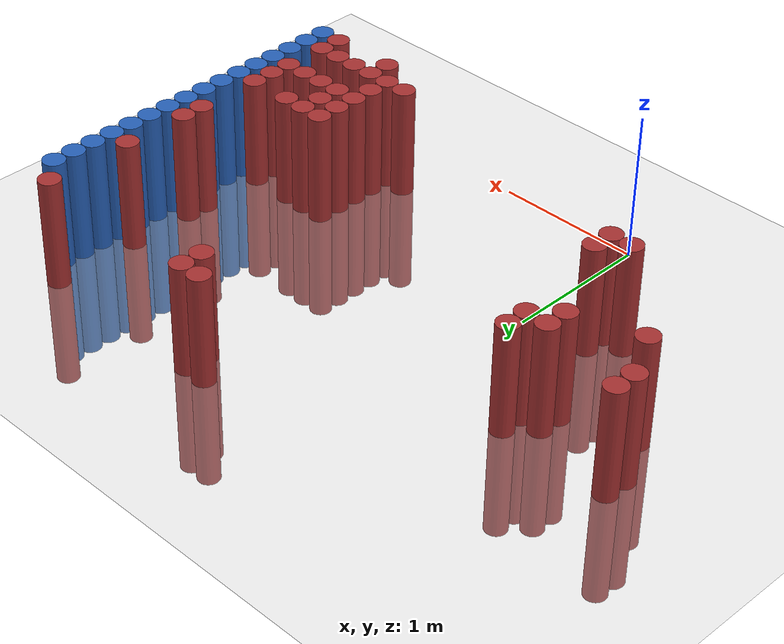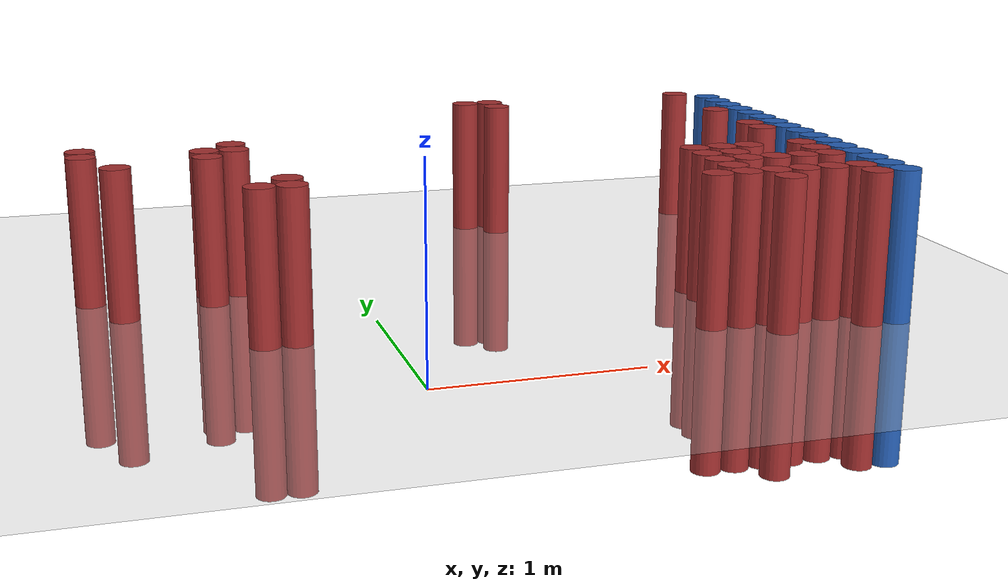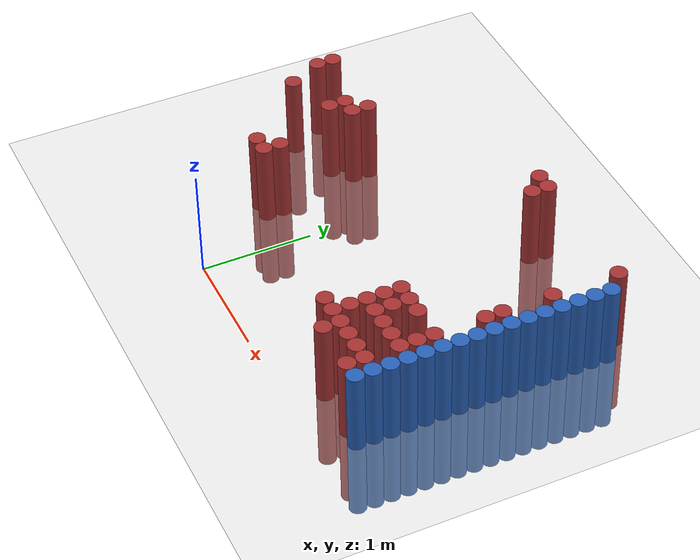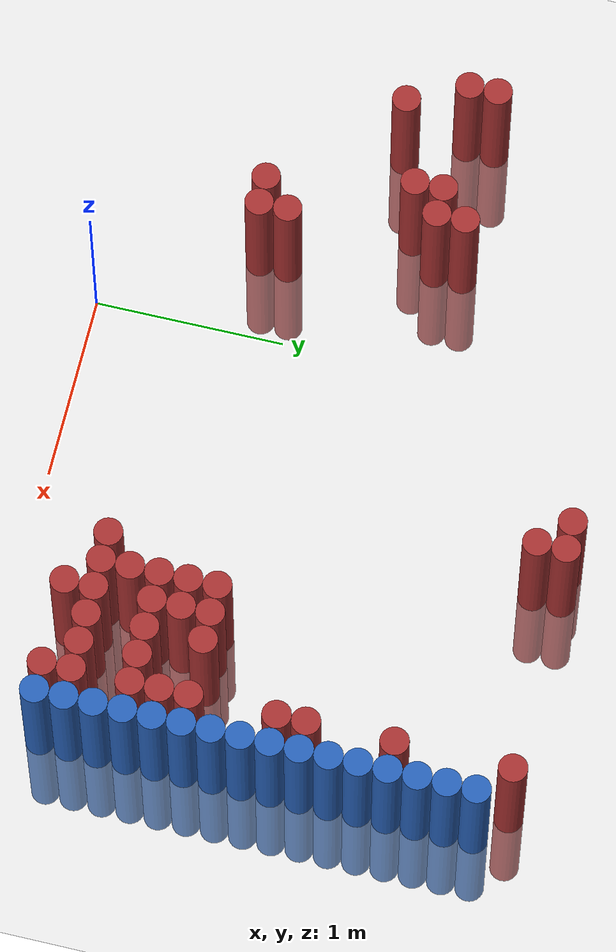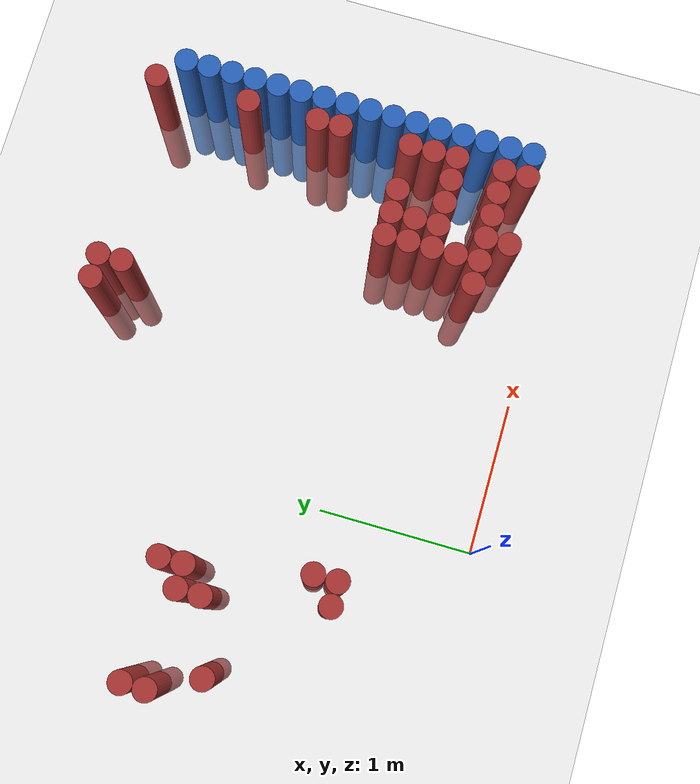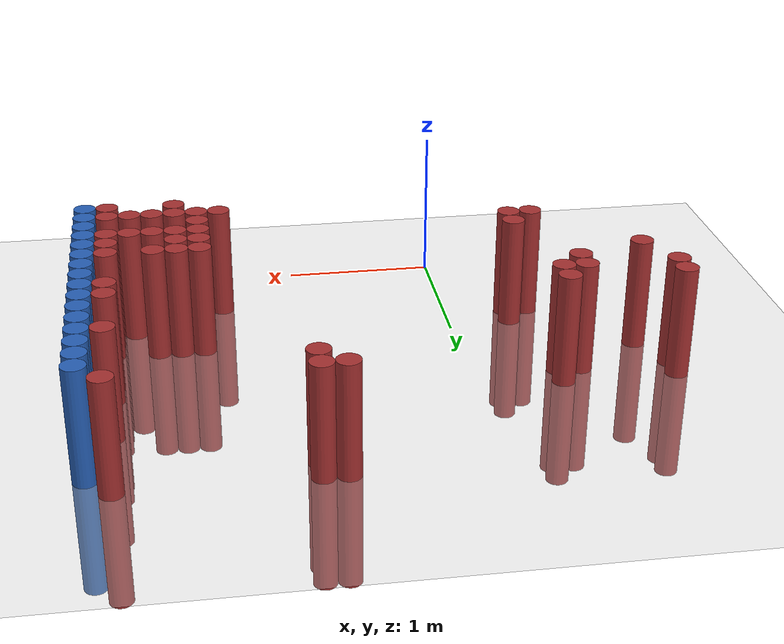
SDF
<sdf version="1.6">
 <world name="default">
  <model name="ground_plane">
   <static>1</static>
   <link name="link">
    <collision name="collision">
     <geometry><plane><normal>0 0 1</normal><size>100 100</size></plane></geometry>
     <surface><friction><ode><mu>100</mu><mu2>50</mu2></ode></friction></surface>
    </collision>
    <visual name="visual">
     <cast_shadows>0</cast_shadows>
     <geometry><plane><normal>0 0 1</normal><size>100 100</size></plane></geometry>
     <material>
      <script><uri>file://media/materials/scripts/gazebo.material</uri><name>Gazebo/Grey</name></script>
     </material>
    </visual>
   </link>
  </model>
  <model name="unit_cylinder_157">
   <static>1</static>
   <pose>-1.325000 1.675000 0.000000 0.000000 0.000000 0.000000</pose>
   <link name="link">
    <inertial>
     <mass>1</mass>
     <inertia><ixx>0.145833</ixx><ixy>0</ixy><ixz>0</ixz><iyy>0.145833</iyy><iyz>0</iyz><izz>0.125</izz></inertia>
    </inertial>
    <collision name="collision">
     <geometry><cylinder><radius>0.075000</radius><length>1.5</length></cylinder></geometry>
    </collision>
    <visual name="visual">
     <geometry><cylinder><radius>0.075000</radius><length>1.5</length></cylinder></geometry>
     <material>
      <ambient>0.648000 0.192000 0.192000 1</ambient>
      <diffuse>0.648000 0.192000 0.192000 1</diffuse>
     </material>
     <material>
      <script><name>Gazebo/Grey</name><uri>file://media/materials/scripts/gazebo.material</uri></script>
     </material>
    </visual>
   </link>
  </model>
  <model name="unit_cylinder_158">
   <static>1</static>
   <pose>-1.325000 1.825000 0.000000 0.000000 0.000000 0.000000</pose>
   <link name="link">
    <inertial>
     <mass>1</mass>
     <inertia><ixx>0.145833</ixx><ixy>0</ixy><ixz>0</ixz><iyy>0.145833</iyy><iyz>0</iyz><izz>0.125</izz></inertia>
    </inertial>
    <collision name="collision">
     <geometry><cylinder><radius>0.075000</radius><length>1.5</length></cylinder></geometry>
    </collision>
    <visual name="visual">
     <geometry><cylinder><radius>0.075000</radius><length>1.5</length></cylinder></geometry>
     <material>
      <ambient>0.648000 0.192000 0.192000 1</ambient>
      <diffuse>0.648000 0.192000 0.192000 1</diffuse>
     </material>
     <material>
      <script><name>Gazebo/Grey</name><uri>file://media/materials/scripts/gazebo.material</uri></script>
     </material>
    </visual>
   </link>
  </model>
  <model name="unit_cylinder_159">
   <static>1</static>
   <pose>-1.175000 1.375000 0.000000 0.000000 0.000000 0.000000</pose>
   <link name="link">
    <inertial>
     <mass>1</mass>
     <inertia><ixx>0.145833</ixx><ixy>0</ixy><ixz>0</ixz><iyy>0.145833</iyy><iyz>0</iyz><izz>0.125</izz></inertia>
    </inertial>
    <collision name="collision">
     <geometry><cylinder><radius>0.075000</radius><length>1.5</length></cylinder></geometry>
    </collision>
    <visual name="visual">
     <geometry><cylinder><radius>0.075000</radius><length>1.5</length></cylinder></geometry>
     <material>
      <ambient>0.648000 0.192000 0.192000 1</ambient>
      <diffuse>0.648000 0.192000 0.192000 1</diffuse>
     </material>
     <material>
      <script><name>Gazebo/Grey</name><uri>file://media/materials/scripts/gazebo.material</uri></script>
     </material>
    </visual>
   </link>
  </model>
  <model name="unit_cylinder_160">
   <static>1</static>
   <pose>-0.725000 1.525000 0.000000 0.000000 0.000000 0.000000</pose>
   <link name="link">
    <inertial>
     <mass>1</mass>
     <inertia><ixx>0.145833</ixx><ixy>0</ixy><ixz>0</ixz><iyy>0.145833</iyy><iyz>0</iyz><izz>0.125</izz></inertia>
    </inertial>
    <collision name="collision">
     <geometry><cylinder><radius>0.075000</radius><length>1.5</length></cylinder></geometry>
    </collision>
    <visual name="visual">
     <geometry><cylinder><radius>0.075000</radius><length>1.5</length></cylinder></geometry>
     <material>
      <ambient>0.648000 0.192000 0.192000 1</ambient>
      <diffuse>0.648000 0.192000 0.192000 1</diffuse>
     </material>
     <material>
      <script><name>Gazebo/Grey</name><uri>file://media/materials/scripts/gazebo.material</uri></script>
     </material>
    </visual>
   </link>
  </model>
  <model name="unit_cylinder_161">
   <static>1</static>
   <pose>-0.725000 1.675000 0.000000 0.000000 0.000000 0.000000</pose>
   <link name="link">
    <inertial>
     <mass>1</mass>
     <inertia><ixx>0.145833</ixx><ixy>0</ixy><ixz>0</ixz><iyy>0.145833</iyy><iyz>0</iyz><izz>0.125</izz></inertia>
    </inertial>
    <collision name="collision">
     <geometry><cylinder><radius>0.075000</radius><length>1.5</length></cylinder></geometry>
    </collision>
    <visual name="visual">
     <geometry><cylinder><radius>0.075000</radius><length>1.5</length></cylinder></geometry>
     <material>
      <ambient>0.648000 0.192000 0.192000 1</ambient>
      <diffuse>0.648000 0.192000 0.192000 1</diffuse>
     </material>
     <material>
      <script><name>Gazebo/Grey</name><uri>file://media/materials/scripts/gazebo.material</uri></script>
     </material>
    </visual>
   </link>
  </model>
  <model name="unit_cylinder_162">
   <static>1</static>
   <pose>-0.575000 0.775000 0.000000 0.000000 0.000000 0.000000</pose>
   <link name="link">
    <inertial>
     <mass>1</mass>
     <inertia><ixx>0.145833</ixx><ixy>0</ixy><ixz>0</ixz><iyy>0.145833</iyy><iyz>0</iyz><izz>0.125</izz></inertia>
    </inertial>
    <collision name="collision">
     <geometry><cylinder><radius>0.075000</radius><length>1.5</length></cylinder></geometry>
    </collision>
    <visual name="visual">
     <geometry><cylinder><radius>0.075000</radius><length>1.5</length></cylinder></geometry>
     <material>
      <ambient>0.648000 0.192000 0.192000 1</ambient>
      <diffuse>0.648000 0.192000 0.192000 1</diffuse>
     </material>
     <material>
      <script><name>Gazebo/Grey</name><uri>file://media/materials/scripts/gazebo.material</uri></script>
     </material>
    </visual>
   </link>
  </model>
  <model name="unit_cylinder_163">
   <static>1</static>
   <pose>-0.575000 1.675000 0.000000 0.000000 0.000000 0.000000</pose>
   <link name="link">
    <inertial>
     <mass>1</mass>
     <inertia><ixx>0.145833</ixx><ixy>0</ixy><ixz>0</ixz><iyy>0.145833</iyy><iyz>0</iyz><izz>0.125</izz></inertia>
    </inertial>
    <collision name="collision">
     <geometry><cylinder><radius>0.075000</radius><length>1.5</length></cylinder></geometry>
    </collision>
    <visual name="visual">
     <geometry><cylinder><radius>0.075000</radius><length>1.5</length></cylinder></geometry>
     <material>
      <ambient>0.648000 0.192000 0.192000 1</ambient>
      <diffuse>0.648000 0.192000 0.192000 1</diffuse>
     </material>
     <material>
      <script><name>Gazebo/Grey</name><uri>file://media/materials/scripts/gazebo.material</uri></script>
     </material>
    </visual>
   </link>
  </model>
  <model name="unit_cylinder_164">
   <static>1</static>
   <pose>-0.575000 1.825000 0.000000 0.000000 0.000000 0.000000</pose>
   <link name="link">
    <inertial>
     <mass>1</mass>
     <inertia><ixx>0.145833</ixx><ixy>0</ixy><ixz>0</ixz><iyy>0.145833</iyy><iyz>0</iyz><izz>0.125</izz></inertia>
    </inertial>
    <collision name="collision">
     <geometry><cylinder><radius>0.075000</radius><length>1.5</length></cylinder></geometry>
    </collision>
    <visual name="visual">
     <geometry><cylinder><radius>0.075000</radius><length>1.5</length></cylinder></geometry>
     <material>
      <ambient>0.648000 0.192000 0.192000 1</ambient>
      <diffuse>0.648000 0.192000 0.192000 1</diffuse>
     </material>
     <material>
      <script><name>Gazebo/Grey</name><uri>file://media/materials/scripts/gazebo.material</uri></script>
     </material>
    </visual>
   </link>
  </model>
  <model name="unit_cylinder_165">
   <static>1</static>
   <pose>-0.425000 0.775000 0.000000 0.000000 0.000000 0.000000</pose>
   <link name="link">
    <inertial>
     <mass>1</mass>
     <inertia><ixx>0.145833</ixx><ixy>0</ixy><ixz>0</ixz><iyy>0.145833</iyy><iyz>0</iyz><izz>0.125</izz></inertia>
    </inertial>
    <collision name="collision">
     <geometry><cylinder><radius>0.075000</radius><length>1.5</length></cylinder></geometry>
    </collision>
    <visual name="visual">
     <geometry><cylinder><radius>0.075000</radius><length>1.5</length></cylinder></geometry>
     <material>
      <ambient>0.648000 0.192000 0.192000 1</ambient>
      <diffuse>0.648000 0.192000 0.192000 1</diffuse>
     </material>
     <material>
      <script><name>Gazebo/Grey</name><uri>file://media/materials/scripts/gazebo.material</uri></script>
     </material>
    </visual>
   </link>
  </model>
  <model name="unit_cylinder_166">
   <static>1</static>
   <pose>-0.425000 0.925000 0.000000 0.000000 0.000000 0.000000</pose>
   <link name="link">
    <inertial>
     <mass>1</mass>
     <inertia><ixx>0.145833</ixx><ixy>0</ixy><ixz>0</ixz><iyy>0.145833</iyy><iyz>0</iyz><izz>0.125</izz></inertia>
    </inertial>
    <collision name="collision">
     <geometry><cylinder><radius>0.075000</radius><length>1.5</length></cylinder></geometry>
    </collision>
    <visual name="visual">
     <geometry><cylinder><radius>0.075000</radius><length>1.5</length></cylinder></geometry>
     <material>
      <ambient>0.648000 0.192000 0.192000 1</ambient>
      <diffuse>0.648000 0.192000 0.192000 1</diffuse>
     </material>
     <material>
      <script><name>Gazebo/Grey</name><uri>file://media/materials/scripts/gazebo.material</uri></script>
     </material>
    </visual>
   </link>
  </model>
  <model name="unit_cylinder_176">
   <static>1</static>
   <pose>0.925000 2.725000 0.000000 0.000000 0.000000 0.000000</pose>
   <link name="link">
    <inertial>
     <mass>1</mass>
     <inertia><ixx>0.145833</ixx><ixy>0</ixy><ixz>0</ixz><iyy>0.145833</iyy><iyz>0</iyz><izz>0.125</izz></inertia>
    </inertial>
    <collision name="collision">
     <geometry><cylinder><radius>0.075000</radius><length>1.5</length></cylinder></geometry>
    </collision>
    <visual name="visual">
     <geometry><cylinder><radius>0.075000</radius><length>1.5</length></cylinder></geometry>
     <material>
      <ambient>0.648000 0.192000 0.192000 1</ambient>
      <diffuse>0.648000 0.192000 0.192000 1</diffuse>
     </material>
     <material>
      <script><name>Gazebo/Grey</name><uri>file://media/materials/scripts/gazebo.material</uri></script>
     </material>
    </visual>
   </link>
  </model>
  <model name="unit_cylinder_183">
   <static>1</static>
   <pose>1.075000 2.575000 0.000000 0.000000 0.000000 0.000000</pose>
   <link name="link">
    <inertial>
     <mass>1</mass>
     <inertia><ixx>0.145833</ixx><ixy>0</ixy><ixz>0</ixz><iyy>0.145833</iyy><iyz>0</iyz><izz>0.125</izz></inertia>
    </inertial>
    <collision name="collision">
     <geometry><cylinder><radius>0.075000</radius><length>1.5</length></cylinder></geometry>
    </collision>
    <visual name="visual">
     <geometry><cylinder><radius>0.075000</radius><length>1.5</length></cylinder></geometry>
     <material>
      <ambient>0.648000 0.192000 0.192000 1</ambient>
      <diffuse>0.648000 0.192000 0.192000 1</diffuse>
     </material>
     <material>
      <script><name>Gazebo/Grey</name><uri>file://media/materials/scripts/gazebo.material</uri></script>
     </material>
    </visual>
   </link>
  </model>
  <model name="unit_cylinder_184">
   <static>1</static>
   <pose>1.075000 2.725000 0.000000 0.000000 0.000000 0.000000</pose>
   <link name="link">
    <inertial>
     <mass>1</mass>
     <inertia><ixx>0.145833</ixx><ixy>0</ixy><ixz>0</ixz><iyy>0.145833</iyy><iyz>0</iyz><izz>0.125</izz></inertia>
    </inertial>
    <collision name="collision">
     <geometry><cylinder><radius>0.075000</radius><length>1.5</length></cylinder></geometry>
    </collision>
    <visual name="visual">
     <geometry><cylinder><radius>0.075000</radius><length>1.5</length></cylinder></geometry>
     <material>
      <ambient>0.648000 0.192000 0.192000 1</ambient>
      <diffuse>0.648000 0.192000 0.192000 1</diffuse>
     </material>
     <material>
      <script><name>Gazebo/Grey</name><uri>file://media/materials/scripts/gazebo.material</uri></script>
     </material>
    </visual>
   </link>
  </model>
  <model name="unit_cylinder_198">
   <static>1</static>
   <pose>1.525000 0.475000 0.000000 0.000000 0.000000 0.000000</pose>
   <link name="link">
    <inertial>
     <mass>1</mass>
     <inertia><ixx>0.145833</ixx><ixy>0</ixy><ixz>0</ixz><iyy>0.145833</iyy><iyz>0</iyz><izz>0.125</izz></inertia>
    </inertial>
    <collision name="collision">
     <geometry><cylinder><radius>0.075000</radius><length>1.5</length></cylinder></geometry>
    </collision>
    <visual name="visual">
     <geometry><cylinder><radius>0.075000</radius><length>1.5</length></cylinder></geometry>
     <material>
      <ambient>0.648000 0.192000 0.192000 1</ambient>
      <diffuse>0.648000 0.192000 0.192000 1</diffuse>
     </material>
     <material>
      <script><name>Gazebo/Grey</name><uri>file://media/materials/scripts/gazebo.material</uri></script>
     </material>
    </visual>
   </link>
  </model>
  <model name="unit_cylinder_201">
   <static>1</static>
   <pose>1.675000 0.475000 0.000000 0.000000 0.000000 0.000000</pose>
   <link name="link">
    <inertial>
     <mass>1</mass>
     <inertia><ixx>0.145833</ixx><ixy>0</ixy><ixz>0</ixz><iyy>0.145833</iyy><iyz>0</iyz><izz>0.125</izz></inertia>
    </inertial>
    <collision name="collision">
     <geometry><cylinder><radius>0.075000</radius><length>1.5</length></cylinder></geometry>
    </collision>
    <visual name="visual">
     <geometry><cylinder><radius>0.075000</radius><length>1.5</length></cylinder></geometry>
     <material>
      <ambient>0.648000 0.192000 0.192000 1</ambient>
      <diffuse>0.648000 0.192000 0.192000 1</diffuse>
     </material>
     <material>
      <script><name>Gazebo/Grey</name><uri>file://media/materials/scripts/gazebo.material</uri></script>
     </material>
    </visual>
   </link>
  </model>
  <model name="unit_cylinder_202">
   <static>1</static>
   <pose>1.675000 0.625000 0.000000 0.000000 0.000000 0.000000</pose>
   <link name="link">
    <inertial>
     <mass>1</mass>
     <inertia><ixx>0.145833</ixx><ixy>0</ixy><ixz>0</ixz><iyy>0.145833</iyy><iyz>0</iyz><izz>0.125</izz></inertia>
    </inertial>
    <collision name="collision">
     <geometry><cylinder><radius>0.075000</radius><length>1.5</length></cylinder></geometry>
    </collision>
    <visual name="visual">
     <geometry><cylinder><radius>0.075000</radius><length>1.5</length></cylinder></geometry>
     <material>
      <ambient>0.648000 0.192000 0.192000 1</ambient>
      <diffuse>0.648000 0.192000 0.192000 1</diffuse>
     </material>
     <material>
      <script><name>Gazebo/Grey</name><uri>file://media/materials/scripts/gazebo.material</uri></script>
     </material>
    </visual>
   </link>
  </model>
  <model name="unit_cylinder_203">
   <static>1</static>
   <pose>1.675000 0.775000 0.000000 0.000000 0.000000 0.000000</pose>
   <link name="link">
    <inertial>
     <mass>1</mass>
     <inertia><ixx>0.145833</ixx><ixy>0</ixy><ixz>0</ixz><iyy>0.145833</iyy><iyz>0</iyz><izz>0.125</izz></inertia>
    </inertial>
    <collision name="collision">
     <geometry><cylinder><radius>0.075000</radius><length>1.5</length></cylinder></geometry>
    </collision>
    <visual name="visual">
     <geometry><cylinder><radius>0.075000</radius><length>1.5</length></cylinder></geometry>
     <material>
      <ambient>0.648000 0.192000 0.192000 1</ambient>
      <diffuse>0.648000 0.192000 0.192000 1</diffuse>
     </material>
     <material>
      <script><name>Gazebo/Grey</name><uri>file://media/materials/scripts/gazebo.material</uri></script>
     </material>
    </visual>
   </link>
  </model>
  <model name="unit_cylinder_204">
   <static>1</static>
   <pose>1.675000 0.925000 0.000000 0.000000 0.000000 0.000000</pose>
   <link name="link">
    <inertial>
     <mass>1</mass>
     <inertia><ixx>0.145833</ixx><ixy>0</ixy><ixz>0</ixz><iyy>0.145833</iyy><iyz>0</iyz><izz>0.125</izz></inertia>
    </inertial>
    <collision name="collision">
     <geometry><cylinder><radius>0.075000</radius><length>1.5</length></cylinder></geometry>
    </collision>
    <visual name="visual">
     <geometry><cylinder><radius>0.075000</radius><length>1.5</length></cylinder></geometry>
     <material>
      <ambient>0.648000 0.192000 0.192000 1</ambient>
      <diffuse>0.648000 0.192000 0.192000 1</diffuse>
     </material>
     <material>
      <script><name>Gazebo/Grey</name><uri>file://media/materials/scripts/gazebo.material</uri></script>
     </material>
    </visual>
   </link>
  </model>
  <model name="unit_cylinder_205">
   <static>1</static>
   <pose>1.675000 1.075000 0.000000 0.000000 0.000000 0.000000</pose>
   <link name="link">
    <inertial>
     <mass>1</mass>
     <inertia><ixx>0.145833</ixx><ixy>0</ixy><ixz>0</ixz><iyy>0.145833</iyy><iyz>0</iyz><izz>0.125</izz></inertia>
    </inertial>
    <collision name="collision">
     <geometry><cylinder><radius>0.075000</radius><length>1.5</length></cylinder></geometry>
    </collision>
    <visual name="visual">
     <geometry><cylinder><radius>0.075000</radius><length>1.5</length></cylinder></geometry>
     <material>
      <ambient>0.648000 0.192000 0.192000 1</ambient>
      <diffuse>0.648000 0.192000 0.192000 1</diffuse>
     </material>
     <material>
      <script><name>Gazebo/Grey</name><uri>file://media/materials/scripts/gazebo.material</uri></script>
     </material>
    </visual>
   </link>
  </model>
  <model name="unit_cylinder_208">
   <static>1</static>
   <pose>1.825000 0.325000 0.000000 0.000000 0.000000 0.000000</pose>
   <link name="link">
    <inertial>
     <mass>1</mass>
     <inertia><ixx>0.145833</ixx><ixy>0</ixy><ixz>0</ixz><iyy>0.145833</iyy><iyz>0</iyz><izz>0.125</izz></inertia>
    </inertial>
    <collision name="collision">
     <geometry><cylinder><radius>0.075000</radius><length>1.5</length></cylinder></geometry>
    </collision>
    <visual name="visual">
     <geometry><cylinder><radius>0.075000</radius><length>1.5</length></cylinder></geometry>
     <material>
      <ambient>0.648000 0.192000 0.192000 1</ambient>
      <diffuse>0.648000 0.192000 0.192000 1</diffuse>
     </material>
     <material>
      <script><name>Gazebo/Grey</name><uri>file://media/materials/scripts/gazebo.material</uri></script>
     </material>
    </visual>
   </link>
  </model>
  <model name="unit_cylinder_209">
   <static>1</static>
   <pose>1.825000 0.475000 0.000000 0.000000 0.000000 0.000000</pose>
   <link name="link">
    <inertial>
     <mass>1</mass>
     <inertia><ixx>0.145833</ixx><ixy>0</ixy><ixz>0</ixz><iyy>0.145833</iyy><iyz>0</iyz><izz>0.125</izz></inertia>
    </inertial>
    <collision name="collision">
     <geometry><cylinder><radius>0.075000</radius><length>1.5</length></cylinder></geometry>
    </collision>
    <visual name="visual">
     <geometry><cylinder><radius>0.075000</radius><length>1.5</length></cylinder></geometry>
     <material>
      <ambient>0.648000 0.192000 0.192000 1</ambient>
      <diffuse>0.648000 0.192000 0.192000 1</diffuse>
     </material>
     <material>
      <script><name>Gazebo/Grey</name><uri>file://media/materials/scripts/gazebo.material</uri></script>
     </material>
    </visual>
   </link>
  </model>
  <model name="unit_cylinder_210">
   <static>1</static>
   <pose>1.825000 0.775000 0.000000 0.000000 0.000000 0.000000</pose>
   <link name="link">
    <inertial>
     <mass>1</mass>
     <inertia><ixx>0.145833</ixx><ixy>0</ixy><ixz>0</ixz><iyy>0.145833</iyy><iyz>0</iyz><izz>0.125</izz></inertia>
    </inertial>
    <collision name="collision">
     <geometry><cylinder><radius>0.075000</radius><length>1.5</length></cylinder></geometry>
    </collision>
    <visual name="visual">
     <geometry><cylinder><radius>0.075000</radius><length>1.5</length></cylinder></geometry>
     <material>
      <ambient>0.648000 0.192000 0.192000 1</ambient>
      <diffuse>0.648000 0.192000 0.192000 1</diffuse>
     </material>
     <material>
      <script><name>Gazebo/Grey</name><uri>file://media/materials/scripts/gazebo.material</uri></script>
     </material>
    </visual>
   </link>
  </model>
  <model name="unit_cylinder_211">
   <static>1</static>
   <pose>1.825000 0.925000 0.000000 0.000000 0.000000 0.000000</pose>
   <link name="link">
    <inertial>
     <mass>1</mass>
     <inertia><ixx>0.145833</ixx><ixy>0</ixy><ixz>0</ixz><iyy>0.145833</iyy><iyz>0</iyz><izz>0.125</izz></inertia>
    </inertial>
    <collision name="collision">
     <geometry><cylinder><radius>0.075000</radius><length>1.5</length></cylinder></geometry>
    </collision>
    <visual name="visual">
     <geometry><cylinder><radius>0.075000</radius><length>1.5</length></cylinder></geometry>
     <material>
      <ambient>0.648000 0.192000 0.192000 1</ambient>
      <diffuse>0.648000 0.192000 0.192000 1</diffuse>
     </material>
     <material>
      <script><name>Gazebo/Grey</name><uri>file://media/materials/scripts/gazebo.material</uri></script>
     </material>
    </visual>
   </link>
  </model>
  <model name="unit_cylinder_212">
   <static>1</static>
   <pose>1.825000 1.075000 0.000000 0.000000 0.000000 0.000000</pose>
   <link name="link">
    <inertial>
     <mass>1</mass>
     <inertia><ixx>0.145833</ixx><ixy>0</ixy><ixz>0</ixz><iyy>0.145833</iyy><iyz>0</iyz><izz>0.125</izz></inertia>
    </inertial>
    <collision name="collision">
     <geometry><cylinder><radius>0.075000</radius><length>1.5</length></cylinder></geometry>
    </collision>
    <visual name="visual">
     <geometry><cylinder><radius>0.075000</radius><length>1.5</length></cylinder></geometry>
     <material>
      <ambient>0.648000 0.192000 0.192000 1</ambient>
      <diffuse>0.648000 0.192000 0.192000 1</diffuse>
     </material>
     <material>
      <script><name>Gazebo/Grey</name><uri>file://media/materials/scripts/gazebo.material</uri></script>
     </material>
    </visual>
   </link>
  </model>
  <model name="unit_cylinder_214">
   <static>1</static>
   <pose>1.975000 0.475000 0.000000 0.000000 0.000000 0.000000</pose>
   <link name="link">
    <inertial>
     <mass>1</mass>
     <inertia><ixx>0.145833</ixx><ixy>0</ixy><ixz>0</ixz><iyy>0.145833</iyy><iyz>0</iyz><izz>0.125</izz></inertia>
    </inertial>
    <collision name="collision">
     <geometry><cylinder><radius>0.075000</radius><length>1.5</length></cylinder></geometry>
    </collision>
    <visual name="visual">
     <geometry><cylinder><radius>0.075000</radius><length>1.5</length></cylinder></geometry>
     <material>
      <ambient>0.648000 0.192000 0.192000 1</ambient>
      <diffuse>0.648000 0.192000 0.192000 1</diffuse>
     </material>
     <material>
      <script><name>Gazebo/Grey</name><uri>file://media/materials/scripts/gazebo.material</uri></script>
     </material>
    </visual>
   </link>
  </model>
  <model name="unit_cylinder_215">
   <static>1</static>
   <pose>1.975000 0.775000 0.000000 0.000000 0.000000 0.000000</pose>
   <link name="link">
    <inertial>
     <mass>1</mass>
     <inertia><ixx>0.145833</ixx><ixy>0</ixy><ixz>0</ixz><iyy>0.145833</iyy><iyz>0</iyz><izz>0.125</izz></inertia>
    </inertial>
    <collision name="collision">
     <geometry><cylinder><radius>0.075000</radius><length>1.5</length></cylinder></geometry>
    </collision>
    <visual name="visual">
     <geometry><cylinder><radius>0.075000</radius><length>1.5</length></cylinder></geometry>
     <material>
      <ambient>0.648000 0.192000 0.192000 1</ambient>
      <diffuse>0.648000 0.192000 0.192000 1</diffuse>
     </material>
     <material>
      <script><name>Gazebo/Grey</name><uri>file://media/materials/scripts/gazebo.material</uri></script>
     </material>
    </visual>
   </link>
  </model>
  <model name="unit_cylinder_216">
   <static>1</static>
   <pose>1.975000 1.075000 0.000000 0.000000 0.000000 0.000000</pose>
   <link name="link">
    <inertial>
     <mass>1</mass>
     <inertia><ixx>0.145833</ixx><ixy>0</ixy><ixz>0</ixz><iyy>0.145833</iyy><iyz>0</iyz><izz>0.125</izz></inertia>
    </inertial>
    <collision name="collision">
     <geometry><cylinder><radius>0.075000</radius><length>1.5</length></cylinder></geometry>
    </collision>
    <visual name="visual">
     <geometry><cylinder><radius>0.075000</radius><length>1.5</length></cylinder></geometry>
     <material>
      <ambient>0.648000 0.192000 0.192000 1</ambient>
      <diffuse>0.648000 0.192000 0.192000 1</diffuse>
     </material>
     <material>
      <script><name>Gazebo/Grey</name><uri>file://media/materials/scripts/gazebo.material</uri></script>
     </material>
    </visual>
   </link>
  </model>
  <model name="unit_cylinder_217">
   <static>1</static>
   <pose>2.125000 0.475000 0.000000 0.000000 0.000000 0.000000</pose>
   <link name="link">
    <inertial>
     <mass>1</mass>
     <inertia><ixx>0.145833</ixx><ixy>0</ixy><ixz>0</ixz><iyy>0.145833</iyy><iyz>0</iyz><izz>0.125</izz></inertia>
    </inertial>
    <collision name="collision">
     <geometry><cylinder><radius>0.075000</radius><length>1.5</length></cylinder></geometry>
    </collision>
    <visual name="visual">
     <geometry><cylinder><radius>0.075000</radius><length>1.5</length></cylinder></geometry>
     <material>
      <ambient>0.648000 0.192000 0.192000 1</ambient>
      <diffuse>0.648000 0.192000 0.192000 1</diffuse>
     </material>
     <material>
      <script><name>Gazebo/Grey</name><uri>file://media/materials/scripts/gazebo.material</uri></script>
     </material>
    </visual>
   </link>
  </model>
  <model name="unit_cylinder_218">
   <static>1</static>
   <pose>2.125000 0.775000 0.000000 0.000000 0.000000 0.000000</pose>
   <link name="link">
    <inertial>
     <mass>1</mass>
     <inertia><ixx>0.145833</ixx><ixy>0</ixy><ixz>0</ixz><iyy>0.145833</iyy><iyz>0</iyz><izz>0.125</izz></inertia>
    </inertial>
    <collision name="collision">
     <geometry><cylinder><radius>0.075000</radius><length>1.5</length></cylinder></geometry>
    </collision>
    <visual name="visual">
     <geometry><cylinder><radius>0.075000</radius><length>1.5</length></cylinder></geometry>
     <material>
      <ambient>0.648000 0.192000 0.192000 1</ambient>
      <diffuse>0.648000 0.192000 0.192000 1</diffuse>
     </material>
     <material>
      <script><name>Gazebo/Grey</name><uri>file://media/materials/scripts/gazebo.material</uri></script>
     </material>
    </visual>
   </link>
  </model>
  <model name="unit_cylinder_222">
   <static>1</static>
   <pose>2.275000 0.325000 0.000000 0.000000 0.000000 0.000000</pose>
   <link name="link">
    <inertial>
     <mass>1</mass>
     <inertia><ixx>0.145833</ixx><ixy>0</ixy><ixz>0</ixz><iyy>0.145833</iyy><iyz>0</iyz><izz>0.125</izz></inertia>
    </inertial>
    <collision name="collision">
     <geometry><cylinder><radius>0.075000</radius><length>1.5</length></cylinder></geometry>
    </collision>
    <visual name="visual">
     <geometry><cylinder><radius>0.075000</radius><length>1.5</length></cylinder></geometry>
     <material>
      <ambient>0.648000 0.192000 0.192000 1</ambient>
      <diffuse>0.648000 0.192000 0.192000 1</diffuse>
     </material>
     <material>
      <script><name>Gazebo/Grey</name><uri>file://media/materials/scripts/gazebo.material</uri></script>
     </material>
    </visual>
   </link>
  </model>
  <model name="unit_cylinder_223">
   <static>1</static>
   <pose>2.275000 0.475000 0.000000 0.000000 0.000000 0.000000</pose>
   <link name="link">
    <inertial>
     <mass>1</mass>
     <inertia><ixx>0.145833</ixx><ixy>0</ixy><ixz>0</ixz><iyy>0.145833</iyy><iyz>0</iyz><izz>0.125</izz></inertia>
    </inertial>
    <collision name="collision">
     <geometry><cylinder><radius>0.075000</radius><length>1.5</length></cylinder></geometry>
    </collision>
    <visual name="visual">
     <geometry><cylinder><radius>0.075000</radius><length>1.5</length></cylinder></geometry>
     <material>
      <ambient>0.648000 0.192000 0.192000 1</ambient>
      <diffuse>0.648000 0.192000 0.192000 1</diffuse>
     </material>
     <material>
      <script><name>Gazebo/Grey</name><uri>file://media/materials/scripts/gazebo.material</uri></script>
     </material>
    </visual>
   </link>
  </model>
  <model name="unit_cylinder_224">
   <static>1</static>
   <pose>2.275000 0.775000 0.000000 0.000000 0.000000 0.000000</pose>
   <link name="link">
    <inertial>
     <mass>1</mass>
     <inertia><ixx>0.145833</ixx><ixy>0</ixy><ixz>0</ixz><iyy>0.145833</iyy><iyz>0</iyz><izz>0.125</izz></inertia>
    </inertial>
    <collision name="collision">
     <geometry><cylinder><radius>0.075000</radius><length>1.5</length></cylinder></geometry>
    </collision>
    <visual name="visual">
     <geometry><cylinder><radius>0.075000</radius><length>1.5</length></cylinder></geometry>
     <material>
      <ambient>0.648000 0.192000 0.192000 1</ambient>
      <diffuse>0.648000 0.192000 0.192000 1</diffuse>
     </material>
     <material>
      <script><name>Gazebo/Grey</name><uri>file://media/materials/scripts/gazebo.material</uri></script>
     </material>
    </visual>
   </link>
  </model>
  <model name="unit_cylinder_225">
   <static>1</static>
   <pose>2.275000 0.925000 0.000000 0.000000 0.000000 0.000000</pose>
   <link name="link">
    <inertial>
     <mass>1</mass>
     <inertia><ixx>0.145833</ixx><ixy>0</ixy><ixz>0</ixz><iyy>0.145833</iyy><iyz>0</iyz><izz>0.125</izz></inertia>
    </inertial>
    <collision name="collision">
     <geometry><cylinder><radius>0.075000</radius><length>1.5</length></cylinder></geometry>
    </collision>
    <visual name="visual">
     <geometry><cylinder><radius>0.075000</radius><length>1.5</length></cylinder></geometry>
     <material>
      <ambient>0.648000 0.192000 0.192000 1</ambient>
      <diffuse>0.648000 0.192000 0.192000 1</diffuse>
     </material>
     <material>
      <script><name>Gazebo/Grey</name><uri>file://media/materials/scripts/gazebo.material</uri></script>
     </material>
    </visual>
   </link>
  </model>
  <model name="unit_cylinder_226">
   <static>1</static>
   <pose>2.275000 1.075000 0.000000 0.000000 0.000000 0.000000</pose>
   <link name="link">
    <inertial>
     <mass>1</mass>
     <inertia><ixx>0.145833</ixx><ixy>0</ixy><ixz>0</ixz><iyy>0.145833</iyy><iyz>0</iyz><izz>0.125</izz></inertia>
    </inertial>
    <collision name="collision">
     <geometry><cylinder><radius>0.075000</radius><length>1.5</length></cylinder></geometry>
    </collision>
    <visual name="visual">
     <geometry><cylinder><radius>0.075000</radius><length>1.5</length></cylinder></geometry>
     <material>
      <ambient>0.648000 0.192000 0.192000 1</ambient>
      <diffuse>0.648000 0.192000 0.192000 1</diffuse>
     </material>
     <material>
      <script><name>Gazebo/Grey</name><uri>file://media/materials/scripts/gazebo.material</uri></script>
     </material>
    </visual>
   </link>
  </model>
  <model name="unit_cylinder_227">
   <static>1</static>
   <pose>2.275000 1.525000 0.000000 0.000000 0.000000 0.000000</pose>
   <link name="link">
    <inertial>
     <mass>1</mass>
     <inertia><ixx>0.145833</ixx><ixy>0</ixy><ixz>0</ixz><iyy>0.145833</iyy><iyz>0</iyz><izz>0.125</izz></inertia>
    </inertial>
    <collision name="collision">
     <geometry><cylinder><radius>0.075000</radius><length>1.5</length></cylinder></geometry>
    </collision>
    <visual name="visual">
     <geometry><cylinder><radius>0.075000</radius><length>1.5</length></cylinder></geometry>
     <material>
      <ambient>0.648000 0.192000 0.192000 1</ambient>
      <diffuse>0.648000 0.192000 0.192000 1</diffuse>
     </material>
     <material>
      <script><name>Gazebo/Grey</name><uri>file://media/materials/scripts/gazebo.material</uri></script>
     </material>
    </visual>
   </link>
  </model>
  <model name="unit_cylinder_228">
   <static>1</static>
   <pose>2.275000 1.675000 0.000000 0.000000 0.000000 0.000000</pose>
   <link name="link">
    <inertial>
     <mass>1</mass>
     <inertia><ixx>0.145833</ixx><ixy>0</ixy><ixz>0</ixz><iyy>0.145833</iyy><iyz>0</iyz><izz>0.125</izz></inertia>
    </inertial>
    <collision name="collision">
     <geometry><cylinder><radius>0.075000</radius><length>1.5</length></cylinder></geometry>
    </collision>
    <visual name="visual">
     <geometry><cylinder><radius>0.075000</radius><length>1.5</length></cylinder></geometry>
     <material>
      <ambient>0.648000 0.192000 0.192000 1</ambient>
      <diffuse>0.648000 0.192000 0.192000 1</diffuse>
     </material>
     <material>
      <script><name>Gazebo/Grey</name><uri>file://media/materials/scripts/gazebo.material</uri></script>
     </material>
    </visual>
   </link>
  </model>
  <model name="unit_cylinder_229">
   <static>1</static>
   <pose>2.275000 2.125000 0.000000 0.000000 0.000000 0.000000</pose>
   <link name="link">
    <inertial>
     <mass>1</mass>
     <inertia><ixx>0.145833</ixx><ixy>0</ixy><ixz>0</ixz><iyy>0.145833</iyy><iyz>0</iyz><izz>0.125</izz></inertia>
    </inertial>
    <collision name="collision">
     <geometry><cylinder><radius>0.075000</radius><length>1.5</length></cylinder></geometry>
    </collision>
    <visual name="visual">
     <geometry><cylinder><radius>0.075000</radius><length>1.5</length></cylinder></geometry>
     <material>
      <ambient>0.648000 0.192000 0.192000 1</ambient>
      <diffuse>0.648000 0.192000 0.192000 1</diffuse>
     </material>
     <material>
      <script><name>Gazebo/Grey</name><uri>file://media/materials/scripts/gazebo.material</uri></script>
     </material>
    </visual>
   </link>
  </model>
  <model name="unit_cylinder_230">
   <static>1</static>
   <pose>2.275000 2.725000 0.000000 0.000000 0.000000 0.000000</pose>
   <link name="link">
    <inertial>
     <mass>1</mass>
     <inertia><ixx>0.145833</ixx><ixy>0</ixy><ixz>0</ixz><iyy>0.145833</iyy><iyz>0</iyz><izz>0.125</izz></inertia>
    </inertial>
    <collision name="collision">
     <geometry><cylinder><radius>0.075000</radius><length>1.5</length></cylinder></geometry>
    </collision>
    <visual name="visual">
     <geometry><cylinder><radius>0.075000</radius><length>1.5</length></cylinder></geometry>
     <material>
      <ambient>0.648000 0.192000 0.192000 1</ambient>
      <diffuse>0.648000 0.192000 0.192000 1</diffuse>
     </material>
     <material>
      <script><name>Gazebo/Grey</name><uri>file://media/materials/scripts/gazebo.material</uri></script>
     </material>
    </visual>
   </link>
  </model>
  <model name="unit_cylinder_242">
   <static>1</static>
   <pose>2.425000 0.325000 0.000000 0.000000 0.000000 0.000000</pose>
   <link name="link">
    <inertial>
     <mass>1</mass>
     <inertia><ixx>0.145833</ixx><ixy>0</ixy><ixz>0</ixz><iyy>0.145833</iyy><iyz>0</iyz><izz>0.125</izz></inertia>
    </inertial>
    <collision name="collision">
     <geometry><cylinder><radius>0.075000</radius><length>1.5</length></cylinder></geometry>
    </collision>
    <visual name="visual">
     <geometry><cylinder><radius>0.075000</radius><length>1.5</length></cylinder></geometry>
     <material>
      <ambient>0.152000 0.379000 0.720000 1</ambient>
      <diffuse>0.152000 0.379000 0.720000 1</diffuse>
     </material>
     <material>
      <script><name>Gazebo/Grey</name><uri>file://media/materials/scripts/gazebo.material</uri></script>
     </material>
    </visual>
   </link>
  </model>
  <model name="unit_cylinder_243">
   <static>1</static>
   <pose>2.425000 0.475000 0.000000 0.000000 0.000000 0.000000</pose>
   <link name="link">
    <inertial>
     <mass>1</mass>
     <inertia><ixx>0.145833</ixx><ixy>0</ixy><ixz>0</ixz><iyy>0.145833</iyy><iyz>0</iyz><izz>0.125</izz></inertia>
    </inertial>
    <collision name="collision">
     <geometry><cylinder><radius>0.075000</radius><length>1.5</length></cylinder></geometry>
    </collision>
    <visual name="visual">
     <geometry><cylinder><radius>0.075000</radius><length>1.5</length></cylinder></geometry>
     <material>
      <ambient>0.152000 0.379000 0.720000 1</ambient>
      <diffuse>0.152000 0.379000 0.720000 1</diffuse>
     </material>
     <material>
      <script><name>Gazebo/Grey</name><uri>file://media/materials/scripts/gazebo.material</uri></script>
     </material>
    </visual>
   </link>
  </model>
  <model name="unit_cylinder_244">
   <static>1</static>
   <pose>2.425000 0.625000 0.000000 0.000000 0.000000 0.000000</pose>
   <link name="link">
    <inertial>
     <mass>1</mass>
     <inertia><ixx>0.145833</ixx><ixy>0</ixy><ixz>0</ixz><iyy>0.145833</iyy><iyz>0</iyz><izz>0.125</izz></inertia>
    </inertial>
    <collision name="collision">
     <geometry><cylinder><radius>0.075000</radius><length>1.5</length></cylinder></geometry>
    </collision>
    <visual name="visual">
     <geometry><cylinder><radius>0.075000</radius><length>1.5</length></cylinder></geometry>
     <material>
      <ambient>0.152000 0.379000 0.720000 1</ambient>
      <diffuse>0.152000 0.379000 0.720000 1</diffuse>
     </material>
     <material>
      <script><name>Gazebo/Grey</name><uri>file://media/materials/scripts/gazebo.material</uri></script>
     </material>
    </visual>
   </link>
  </model>
  <model name="unit_cylinder_245">
   <static>1</static>
   <pose>2.425000 0.775000 0.000000 0.000000 0.000000 0.000000</pose>
   <link name="link">
    <inertial>
     <mass>1</mass>
     <inertia><ixx>0.145833</ixx><ixy>0</ixy><ixz>0</ixz><iyy>0.145833</iyy><iyz>0</iyz><izz>0.125</izz></inertia>
    </inertial>
    <collision name="collision">
     <geometry><cylinder><radius>0.075000</radius><length>1.5</length></cylinder></geometry>
    </collision>
    <visual name="visual">
     <geometry><cylinder><radius>0.075000</radius><length>1.5</length></cylinder></geometry>
     <material>
      <ambient>0.152000 0.379000 0.720000 1</ambient>
      <diffuse>0.152000 0.379000 0.720000 1</diffuse>
     </material>
     <material>
      <script><name>Gazebo/Grey</name><uri>file://media/materials/scripts/gazebo.material</uri></script>
     </material>
    </visual>
   </link>
  </model>
  <model name="unit_cylinder_246">
   <static>1</static>
   <pose>2.425000 0.925000 0.000000 0.000000 0.000000 0.000000</pose>
   <link name="link">
    <inertial>
     <mass>1</mass>
     <inertia><ixx>0.145833</ixx><ixy>0</ixy><ixz>0</ixz><iyy>0.145833</iyy><iyz>0</iyz><izz>0.125</izz></inertia>
    </inertial>
    <collision name="collision">
     <geometry><cylinder><radius>0.075000</radius><length>1.5</length></cylinder></geometry>
    </collision>
    <visual name="visual">
     <geometry><cylinder><radius>0.075000</radius><length>1.5</length></cylinder></geometry>
     <material>
      <ambient>0.152000 0.379000 0.720000 1</ambient>
      <diffuse>0.152000 0.379000 0.720000 1</diffuse>
     </material>
     <material>
      <script><name>Gazebo/Grey</name><uri>file://media/materials/scripts/gazebo.material</uri></script>
     </material>
    </visual>
   </link>
  </model>
  <model name="unit_cylinder_247">
   <static>1</static>
   <pose>2.425000 1.075000 0.000000 0.000000 0.000000 0.000000</pose>
   <link name="link">
    <inertial>
     <mass>1</mass>
     <inertia><ixx>0.145833</ixx><ixy>0</ixy><ixz>0</ixz><iyy>0.145833</iyy><iyz>0</iyz><izz>0.125</izz></inertia>
    </inertial>
    <collision name="collision">
     <geometry><cylinder><radius>0.075000</radius><length>1.5</length></cylinder></geometry>
    </collision>
    <visual name="visual">
     <geometry><cylinder><radius>0.075000</radius><length>1.5</length></cylinder></geometry>
     <material>
      <ambient>0.152000 0.379000 0.720000 1</ambient>
      <diffuse>0.152000 0.379000 0.720000 1</diffuse>
     </material>
     <material>
      <script><name>Gazebo/Grey</name><uri>file://media/materials/scripts/gazebo.material</uri></script>
     </material>
    </visual>
   </link>
  </model>
  <model name="unit_cylinder_248">
   <static>1</static>
   <pose>2.425000 1.225000 0.000000 0.000000 0.000000 0.000000</pose>
   <link name="link">
    <inertial>
     <mass>1</mass>
     <inertia><ixx>0.145833</ixx><ixy>0</ixy><ixz>0</ixz><iyy>0.145833</iyy><iyz>0</iyz><izz>0.125</izz></inertia>
    </inertial>
    <collision name="collision">
     <geometry><cylinder><radius>0.075000</radius><length>1.5</length></cylinder></geometry>
    </collision>
    <visual name="visual">
     <geometry><cylinder><radius>0.075000</radius><length>1.5</length></cylinder></geometry>
     <material>
      <ambient>0.152000 0.379000 0.720000 1</ambient>
      <diffuse>0.152000 0.379000 0.720000 1</diffuse>
     </material>
     <material>
      <script><name>Gazebo/Grey</name><uri>file://media/materials/scripts/gazebo.material</uri></script>
     </material>
    </visual>
   </link>
  </model>
  <model name="unit_cylinder_249">
   <static>1</static>
   <pose>2.425000 1.375000 0.000000 0.000000 0.000000 0.000000</pose>
   <link name="link">
    <inertial>
     <mass>1</mass>
     <inertia><ixx>0.145833</ixx><ixy>0</ixy><ixz>0</ixz><iyy>0.145833</iyy><iyz>0</iyz><izz>0.125</izz></inertia>
    </inertial>
    <collision name="collision">
     <geometry><cylinder><radius>0.075000</radius><length>1.5</length></cylinder></geometry>
    </collision>
    <visual name="visual">
     <geometry><cylinder><radius>0.075000</radius><length>1.5</length></cylinder></geometry>
     <material>
      <ambient>0.152000 0.379000 0.720000 1</ambient>
      <diffuse>0.152000 0.379000 0.720000 1</diffuse>
     </material>
     <material>
      <script><name>Gazebo/Grey</name><uri>file://media/materials/scripts/gazebo.material</uri></script>
     </material>
    </visual>
   </link>
  </model>
  <model name="unit_cylinder_250">
   <static>1</static>
   <pose>2.425000 1.525000 0.000000 0.000000 0.000000 0.000000</pose>
   <link name="link">
    <inertial>
     <mass>1</mass>
     <inertia><ixx>0.145833</ixx><ixy>0</ixy><ixz>0</ixz><iyy>0.145833</iyy><iyz>0</iyz><izz>0.125</izz></inertia>
    </inertial>
    <collision name="collision">
     <geometry><cylinder><radius>0.075000</radius><length>1.5</length></cylinder></geometry>
    </collision>
    <visual name="visual">
     <geometry><cylinder><radius>0.075000</radius><length>1.5</length></cylinder></geometry>
     <material>
      <ambient>0.152000 0.379000 0.720000 1</ambient>
      <diffuse>0.152000 0.379000 0.720000 1</diffuse>
     </material>
     <material>
      <script><name>Gazebo/Grey</name><uri>file://media/materials/scripts/gazebo.material</uri></script>
     </material>
    </visual>
   </link>
  </model>
  <model name="unit_cylinder_251">
   <static>1</static>
   <pose>2.425000 1.675000 0.000000 0.000000 0.000000 0.000000</pose>
   <link name="link">
    <inertial>
     <mass>1</mass>
     <inertia><ixx>0.145833</ixx><ixy>0</ixy><ixz>0</ixz><iyy>0.145833</iyy><iyz>0</iyz><izz>0.125</izz></inertia>
    </inertial>
    <collision name="collision">
     <geometry><cylinder><radius>0.075000</radius><length>1.5</length></cylinder></geometry>
    </collision>
    <visual name="visual">
     <geometry><cylinder><radius>0.075000</radius><length>1.5</length></cylinder></geometry>
     <material>
      <ambient>0.152000 0.379000 0.720000 1</ambient>
      <diffuse>0.152000 0.379000 0.720000 1</diffuse>
     </material>
     <material>
      <script><name>Gazebo/Grey</name><uri>file://media/materials/scripts/gazebo.material</uri></script>
     </material>
    </visual>
   </link>
  </model>
  <model name="unit_cylinder_252">
   <static>1</static>
   <pose>2.425000 1.825000 0.000000 0.000000 0.000000 0.000000</pose>
   <link name="link">
    <inertial>
     <mass>1</mass>
     <inertia><ixx>0.145833</ixx><ixy>0</ixy><ixz>0</ixz><iyy>0.145833</iyy><iyz>0</iyz><izz>0.125</izz></inertia>
    </inertial>
    <collision name="collision">
     <geometry><cylinder><radius>0.075000</radius><length>1.5</length></cylinder></geometry>
    </collision>
    <visual name="visual">
     <geometry><cylinder><radius>0.075000</radius><length>1.5</length></cylinder></geometry>
     <material>
      <ambient>0.152000 0.379000 0.720000 1</ambient>
      <diffuse>0.152000 0.379000 0.720000 1</diffuse>
     </material>
     <material>
      <script><name>Gazebo/Grey</name><uri>file://media/materials/scripts/gazebo.material</uri></script>
     </material>
    </visual>
   </link>
  </model>
  <model name="unit_cylinder_253">
   <static>1</static>
   <pose>2.425000 1.975000 0.000000 0.000000 0.000000 0.000000</pose>
   <link name="link">
    <inertial>
     <mass>1</mass>
     <inertia><ixx>0.145833</ixx><ixy>0</ixy><ixz>0</ixz><iyy>0.145833</iyy><iyz>0</iyz><izz>0.125</izz></inertia>
    </inertial>
    <collision name="collision">
     <geometry><cylinder><radius>0.075000</radius><length>1.5</length></cylinder></geometry>
    </collision>
    <visual name="visual">
     <geometry><cylinder><radius>0.075000</radius><length>1.5</length></cylinder></geometry>
     <material>
      <ambient>0.152000 0.379000 0.720000 1</ambient>
      <diffuse>0.152000 0.379000 0.720000 1</diffuse>
     </material>
     <material>
      <script><name>Gazebo/Grey</name><uri>file://media/materials/scripts/gazebo.material</uri></script>
     </material>
    </visual>
   </link>
  </model>
  <model name="unit_cylinder_254">
   <static>1</static>
   <pose>2.425000 2.125000 0.000000 0.000000 0.000000 0.000000</pose>
   <link name="link">
    <inertial>
     <mass>1</mass>
     <inertia><ixx>0.145833</ixx><ixy>0</ixy><ixz>0</ixz><iyy>0.145833</iyy><iyz>0</iyz><izz>0.125</izz></inertia>
    </inertial>
    <collision name="collision">
     <geometry><cylinder><radius>0.075000</radius><length>1.5</length></cylinder></geometry>
    </collision>
    <visual name="visual">
     <geometry><cylinder><radius>0.075000</radius><length>1.5</length></cylinder></geometry>
     <material>
      <ambient>0.152000 0.379000 0.720000 1</ambient>
      <diffuse>0.152000 0.379000 0.720000 1</diffuse>
     </material>
     <material>
      <script><name>Gazebo/Grey</name><uri>file://media/materials/scripts/gazebo.material</uri></script>
     </material>
    </visual>
   </link>
  </model>
  <model name="unit_cylinder_255">
   <static>1</static>
   <pose>2.425000 2.275000 0.000000 0.000000 0.000000 0.000000</pose>
   <link name="link">
    <inertial>
     <mass>1</mass>
     <inertia><ixx>0.145833</ixx><ixy>0</ixy><ixz>0</ixz><iyy>0.145833</iyy><iyz>0</iyz><izz>0.125</izz></inertia>
    </inertial>
    <collision name="collision">
     <geometry><cylinder><radius>0.075000</radius><length>1.5</length></cylinder></geometry>
    </collision>
    <visual name="visual">
     <geometry><cylinder><radius>0.075000</radius><length>1.5</length></cylinder></geometry>
     <material>
      <ambient>0.152000 0.379000 0.720000 1</ambient>
      <diffuse>0.152000 0.379000 0.720000 1</diffuse>
     </material>
     <material>
      <script><name>Gazebo/Grey</name><uri>file://media/materials/scripts/gazebo.material</uri></script>
     </material>
    </visual>
   </link>
  </model>
  <model name="unit_cylinder_256">
   <static>1</static>
   <pose>2.425000 2.425000 0.000000 0.000000 0.000000 0.000000</pose>
   <link name="link">
    <inertial>
     <mass>1</mass>
     <inertia><ixx>0.145833</ixx><ixy>0</ixy><ixz>0</ixz><iyy>0.145833</iyy><iyz>0</iyz><izz>0.125</izz></inertia>
    </inertial>
    <collision name="collision">
     <geometry><cylinder><radius>0.075000</radius><length>1.5</length></cylinder></geometry>
    </collision>
    <visual name="visual">
     <geometry><cylinder><radius>0.075000</radius><length>1.5</length></cylinder></geometry>
     <material>
      <ambient>0.152000 0.379000 0.720000 1</ambient>
      <diffuse>0.152000 0.379000 0.720000 1</diffuse>
     </material>
     <material>
      <script><name>Gazebo/Grey</name><uri>file://media/materials/scripts/gazebo.material</uri></script>
     </material>
    </visual>
   </link>
  </model>
  <model name="unit_cylinder_257">
   <static>1</static>
   <pose>2.425000 2.575000 0.000000 0.000000 0.000000 0.000000</pose>
   <link name="link">
    <inertial>
     <mass>1</mass>
     <inertia><ixx>0.145833</ixx><ixy>0</ixy><ixz>0</ixz><iyy>0.145833</iyy><iyz>0</iyz><izz>0.125</izz></inertia>
    </inertial>
    <collision name="collision">
     <geometry><cylinder><radius>0.075000</radius><length>1.5</length></cylinder></geometry>
    </collision>
    <visual name="visual">
     <geometry><cylinder><radius>0.075000</radius><length>1.5</length></cylinder></geometry>
     <material>
      <ambient>0.152000 0.379000 0.720000 1</ambient>
      <diffuse>0.152000 0.379000 0.720000 1</diffuse>
     </material>
     <material>
      <script><name>Gazebo/Grey</name><uri>file://media/materials/scripts/gazebo.material</uri></script>
     </material>
    </visual>
   </link>
  </model>
 </world>
</sdf>
